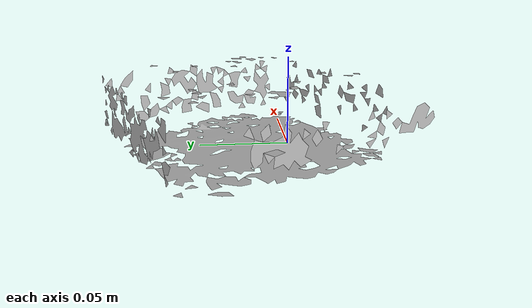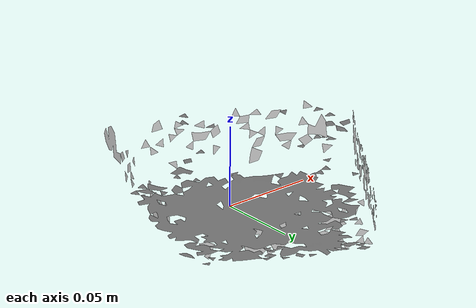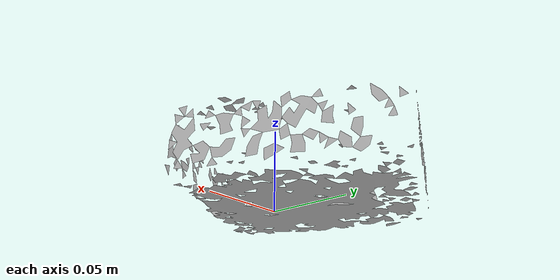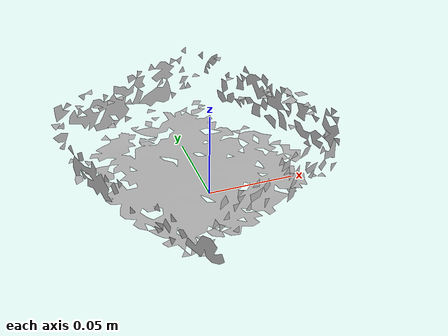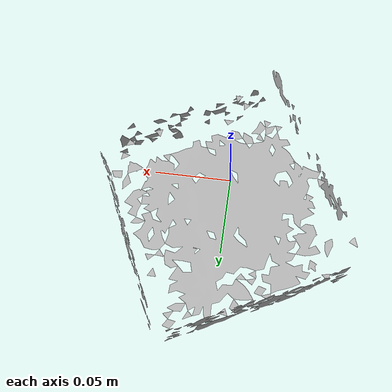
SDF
<?xml version="1.0" ?>
<sdf version="1.4">
  <model name='ycb_071_nine_hole_peg_test'>
    <link name='body'>
      <inertial>
        <mass>1.435</mass>
        <pose>-0.000188539241344 0.0243737213452 0.0199528660623 0 0 0</pose>
        <inertia>
          <ixx>0.00218332907056</ixx>
          <ixy>-4.43920651524e-05</ixy>
          <ixz>1.32107640284e-06</ixz>
          <iyy>0.00199142937023</iyy>
          <iyz>-4.24832047138e-06</iyz>
          <izz>0.00379170599246</izz>
        </inertia>
      </inertial>
      <visual name='ycb_071_nine_hole_peg_test_visual'>
        <pose>0 0 0 0 0 0</pose>
        <geometry>
          <mesh>
            <uri>model://ycb_071_nine_hole_peg_test/meshes/textured.dae</uri>
          </mesh>
        </geometry>
      </visual>
      <collision name='ycb_071_nine_hole_peg_test_collision'>
        <pose>0 0 0 0 0 0</pose>
        <geometry>
          <mesh>
            <uri>model://ycb_071_nine_hole_peg_test/meshes/nontextured.stl</uri>
          </mesh>
        </geometry>
        <max_contacts>10</max_contacts>
      </collision>
    </link>
  </model>
</sdf>
